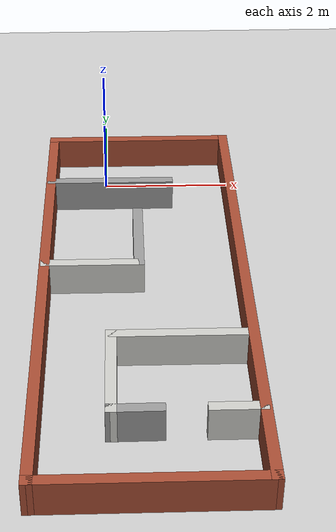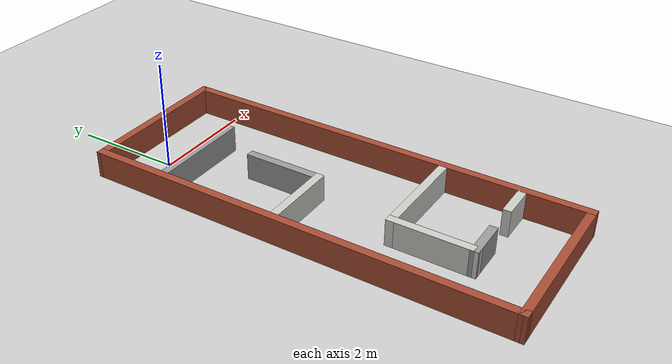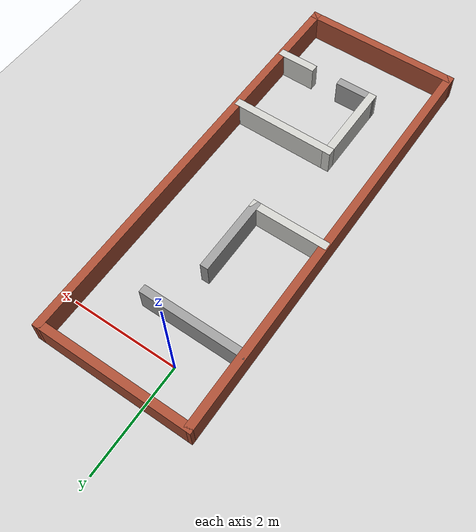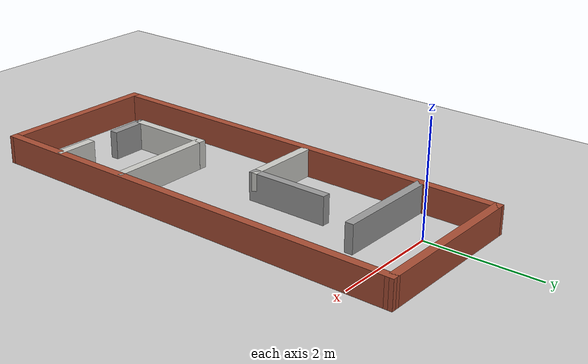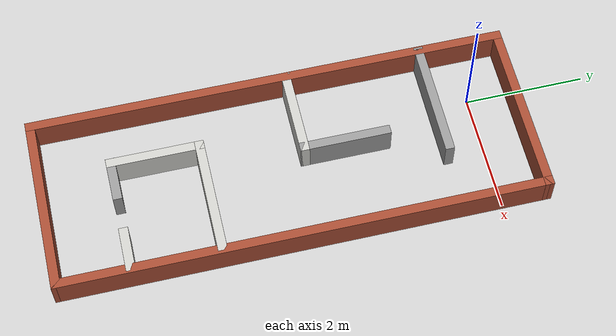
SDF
<sdf version="1.6">
 <world name="default">
  <light name="sun" type="directional">
   <pose>0 0 10 0 -0 0</pose>
   <diffuse>0.8 0.8 0.8 1</diffuse>
   <specular>0.2 0.2 0.2 1</specular>
   <attenuation>
    <range>1000</range>
    <constant>0.9</constant>
    <linear>0.01</linear>
    <quadratic>0.001</quadratic>
   </attenuation>
   <direction>-0.5 0.1 -0.9</direction>
  </light>
  <model name="ground_plane">
   <static>1</static>
   <link name="link">
    <collision name="collision">
     <geometry><plane><normal>0 0 1</normal><size>100 100</size></plane></geometry>
     <surface>
      <contact><collide_bitmask>65535</collide_bitmask></contact>
      <friction><ode><mu>100</mu><mu2>50</mu2></ode></friction>
     </surface>
    </collision>
    <visual name="visual">
     <cast_shadows>0</cast_shadows>
     <geometry><plane><normal>0 0 1</normal><size>100 100</size></plane></geometry>
     <material>
      <script><uri>file://media/materials/scripts/gazebo.material</uri><name>Gazebo/Grey</name></script>
     </material>
    </visual>
   </link>
  </model>
  <gravity>0 0 -9.8</gravity>
  <magnetic_field>6e-06 2.3e-05 -4.2e-05</magnetic_field>
  <atmosphere type="adiabatic"/>
  <physics name="default_physics" default="0" type="ode">
   <max_step_size>0.001</max_step_size>
   <real_time_factor>1</real_time_factor>
   <real_time_update_rate>1000</real_time_update_rate>
  </physics>
  <scene><ambient>0.4 0.4 0.4 1</ambient><background>0.7 0.7 0.7 1</background><shadows>1</shadows></scene>
  <audio><device>default</device></audio>
  <spherical_coordinates>
   <surface_model>EARTH_WGS84</surface_model>
   <latitude_deg>0</latitude_deg>
   <longitude_deg>0</longitude_deg>
   <elevation>0</elevation>
   <heading_deg>0</heading_deg>
  </spherical_coordinates>
  <model name="room">
   <pose>0.541247 -3.19472 0 0 -0 1.56638</pose>
   <link name="Wall_0">
    <collision name="Wall_0_Collision">
     <geometry><box><size>8 0.15 0.5</size></box></geometry>
     <pose>0 0 0.25 0 -0 0</pose>
    </collision>
    <visual name="Wall_0_Visual">
     <pose>0 0 0.25 0 -0 0</pose>
     <geometry><box><size>8 0.15 0.5</size></box></geometry>
     <material>
      <script><uri>file://media/materials/scripts/gazebo.material</uri><name>Gazebo/Bricks</name></script>
      <ambient>1 1 1 1</ambient>
     </material>
     <meta><layer>0</layer></meta>
    </visual>
    <pose>-0.005 1.43 0 0 -0 0</pose>
   </link>
   <link name="Wall_1">
    <collision name="Wall_1_Collision">
     <geometry><box><size>3.01002 0.15 0.5</size></box></geometry>
     <pose>0 0 0.25 0 -0 0</pose>
    </collision>
    <visual name="Wall_1_Visual">
     <pose>0 0 0.25 0 -0 0</pose>
     <geometry><box><size>3.01002 0.15 0.5</size></box></geometry>
     <material>
      <script><uri>file://media/materials/scripts/gazebo.material</uri><name>Gazebo/Bricks</name></script>
      <ambient>1 1 1 1</ambient>
     </material>
     <meta><layer>0</layer></meta>
    </visual>
    <pose>3.925 -0 0 0 -0 -1.5673</pose>
   </link>
   <link name="Wall_10">
    <collision name="Wall_10_Collision">
     <geometry><box><size>2 0.15 0.5</size></box></geometry>
     <pose>0 0 0.25 0 -0 0</pose>
    </collision>
    <visual name="Wall_10_Visual">
     <pose>0 0 0.25 0 -0 0</pose>
     <geometry><box><size>2 0.15 0.5</size></box></geometry>
     <material>
      <script><uri>file://media/materials/scripts/gazebo.material</uri><name>Gazebo/CeilingTiled</name></script>
      <ambient>1 1 1 1</ambient>
     </material>
     <meta><layer>0</layer></meta>
    </visual>
    <pose>-1.325 -0.455 0 0 -0 1.5708</pose>
   </link>
   <link name="Wall_11">
    <collision name="Wall_11_Collision">
     <geometry><box><size>1.59225 0.15 0.5</size></box></geometry>
     <pose>0 0 0.25 0 -0 0</pose>
    </collision>
    <visual name="Wall_11_Visual">
     <pose>0 0 0.25 0 -0 0</pose>
     <geometry><box><size>1.59225 0.15 0.5</size></box></geometry>
     <material>
      <script><uri>file://media/materials/scripts/gazebo.material</uri><name>Gazebo/CeilingTiled</name></script>
      <ambient>1 1 1 1</ambient>
     </material>
     <meta><layer>0</layer></meta>
    </visual>
    <pose>-2.046 0.47 0 0 -0 3.14159</pose>
   </link>
   <link name="Wall_12">
    <collision name="Wall_12_Collision">
     <geometry><box><size>0.75 0.15 0.5</size></box></geometry>
     <pose>0 0 0.25 0 -0 0</pose>
    </collision>
    <visual name="Wall_12_Visual">
     <pose>0 0 0.25 0 -0 0</pose>
     <geometry><box><size>0.75 0.15 0.5</size></box></geometry>
     <material>
      <script><uri>file://media/materials/scripts/gazebo.material</uri><name>Gazebo/Grey</name></script>
      <ambient>1 1 1 1</ambient>
     </material>
     <meta><layer>0</layer></meta>
    </visual>
    <pose>-2.764 0.17 0 0 -0 -1.5608</pose>
   </link>
   <link name="Wall_14">
    <collision name="Wall_14_Collision">
     <geometry><box><size>0.75 0.15 0.5</size></box></geometry>
     <pose>0 0 0.25 0 -0 0</pose>
    </collision>
    <visual name="Wall_14_Visual">
     <pose>0 0 0.25 0 -0 0</pose>
     <geometry><box><size>0.75 0.15 0.5</size></box></geometry>
     <material>
      <script><uri>file://media/materials/scripts/gazebo.material</uri><name>Gazebo/CeilingTiled</name></script>
      <ambient>1 1 1 1</ambient>
     </material>
     <meta><layer>0</layer></meta>
    </visual>
    <pose>-2.761 -1.097 0 0 -0 1.5708</pose>
   </link>
   <link name="Wall_16">
    <collision name="Wall_16_Collision">
     <geometry><box><size>1.5 0.15 0.5</size></box></geometry>
     <pose>0 0 0.25 0 -0 0</pose>
    </collision>
    <visual name="Wall_16_Visual">
     <pose>0 0 0.25 0 -0 0</pose>
     <geometry><box><size>1.5 0.15 0.5</size></box></geometry>
     <material>
      <script><uri>file://media/materials/scripts/gazebo.material</uri><name>Gazebo/CeilingTiled</name></script>
      <ambient>1 1 1 1</ambient>
     </material>
     <meta><layer>0</layer></meta>
    </visual>
    <pose>0.304 0.737 0 0 -0 -1.5708</pose>
   </link>
   <link name="Wall_17">
    <collision name="Wall_17_Collision">
     <geometry><box><size>1.5 0.15 0.5</size></box></geometry>
     <pose>0 0 0.25 0 -0 0</pose>
    </collision>
    <visual name="Wall_17_Visual">
     <pose>0 0 0.25 0 -0 0</pose>
     <geometry><box><size>1.5 0.15 0.5</size></box></geometry>
     <material>
      <script><uri>file://media/materials/scripts/gazebo.material</uri><name>Gazebo/Grey</name></script>
      <ambient>1 1 1 1</ambient>
     </material>
     <meta><layer>0</layer></meta>
    </visual>
    <pose>0.979 0.062 0 0 -0 0</pose>
   </link>
   <link name="Wall_2">
    <collision name="Wall_2_Collision">
     <geometry><box><size>8 0.15 0.5</size></box></geometry>
     <pose>0 0 0.25 0 -0 0</pose>
    </collision>
    <visual name="Wall_2_Visual">
     <pose>0 0 0.25 0 -0 0</pose>
     <geometry><box><size>8 0.15 0.5</size></box></geometry>
     <material>
      <script><uri>file://media/materials/scripts/gazebo.material</uri><name>Gazebo/Bricks</name></script>
      <ambient>1 1 1 1</ambient>
     </material>
     <meta><layer>0</layer></meta>
    </visual>
    <pose>0.005 -1.43 0 0 -0 3.14159</pose>
   </link>
   <link name="Wall_3">
    <collision name="Wall_3_Collision">
     <geometry><box><size>3.01002 0.15 0.5</size></box></geometry>
     <pose>0 0 0.25 0 -0 0</pose>
    </collision>
    <visual name="Wall_3_Visual">
     <pose>0 0 0.25 0 -0 0</pose>
     <geometry><box><size>3.01002 0.15 0.5</size></box></geometry>
     <material>
      <script><uri>file://media/materials/scripts/gazebo.material</uri><name>Gazebo/Bricks</name></script>
      <ambient>1 1 1 1</ambient>
     </material>
     <meta><layer>0</layer></meta>
    </visual>
    <pose>-3.925 -0 0 0 -0 1.57429</pose>
   </link>
   <link name="Wall_5">
    <collision name="Wall_5_Collision">
     <geometry><box><size>2 0.15 0.5</size></box></geometry>
     <pose>0 0 0.25 0 -0 0</pose>
    </collision>
    <visual name="Wall_5_Visual">
     <pose>0 0 0.25 0 -0 0</pose>
     <geometry><box><size>2 0.15 0.5</size></box></geometry>
     <material>
      <script><uri>file://media/materials/scripts/gazebo.material</uri><name>Gazebo/Grey</name></script>
      <ambient>1 1 1 1</ambient>
     </material>
     <meta><layer>0</layer></meta>
    </visual>
    <pose>2.57 0.485 0 0 -0 -1.5708</pose>
   </link>
   <static>1</static>
  </model>
 </world>
</sdf>
